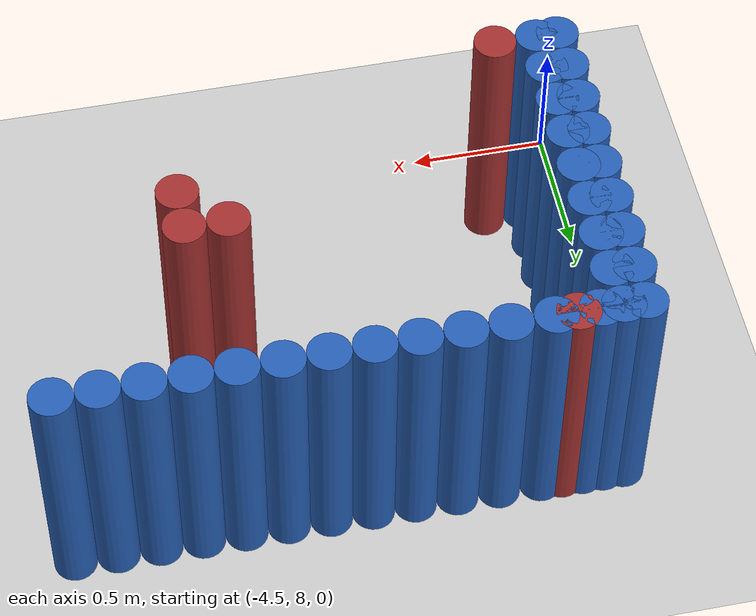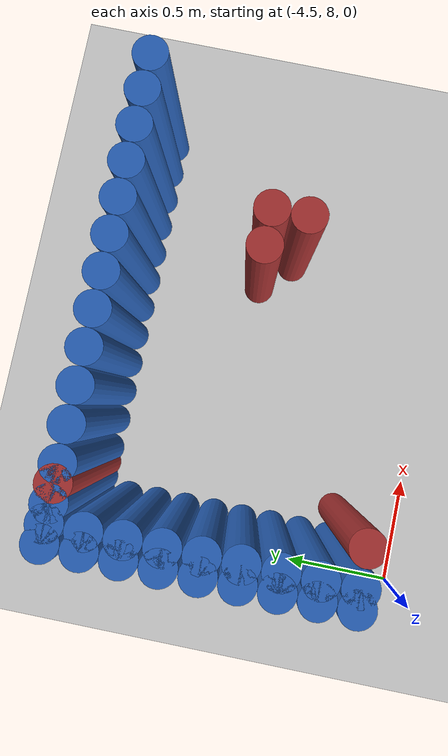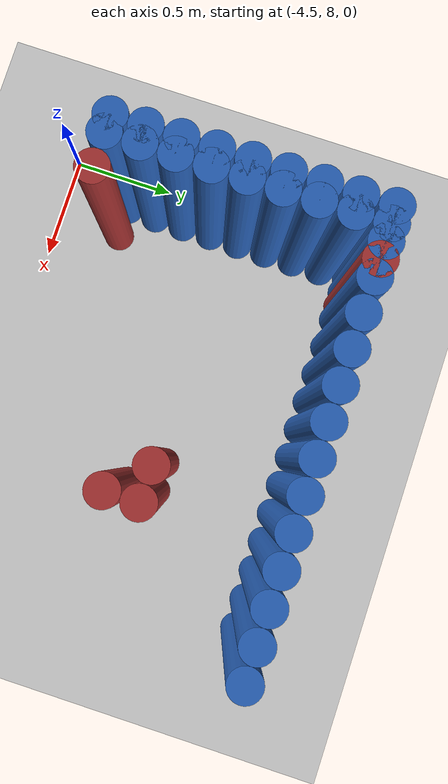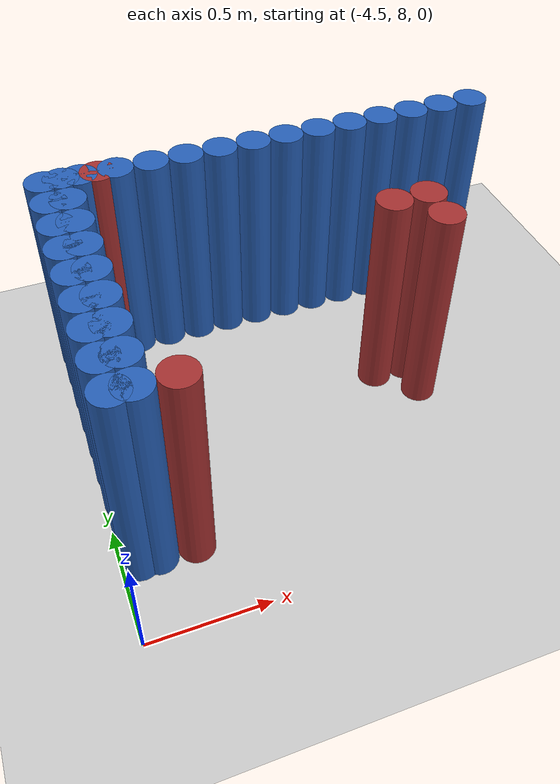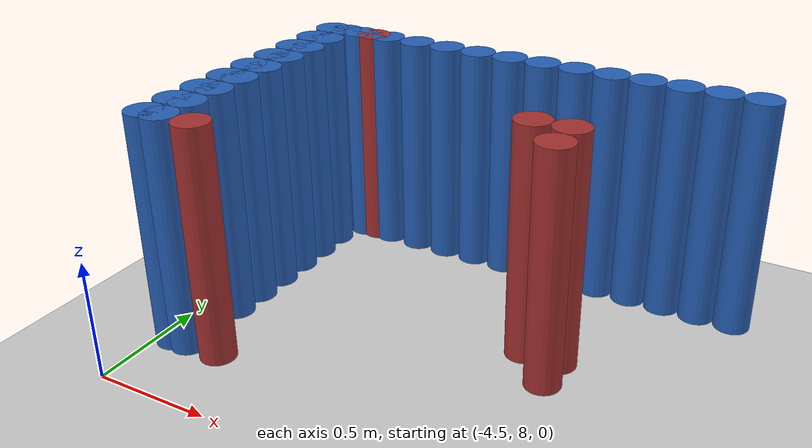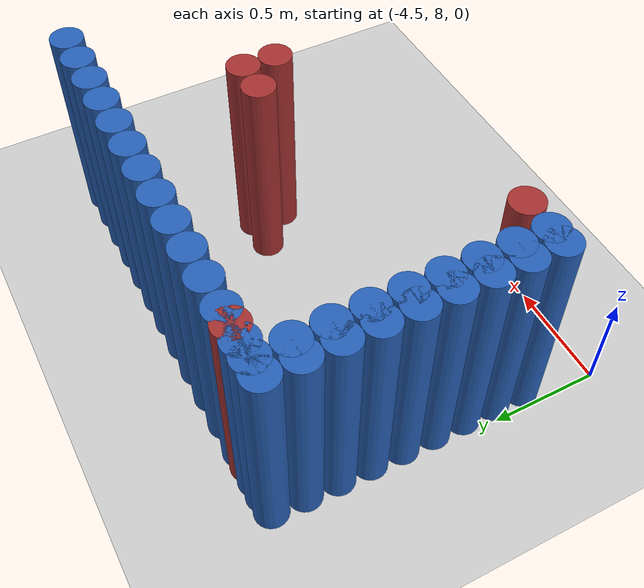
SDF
<sdf version="1.6">
 <world name="barn_world">
  <model name="ground_plane">
   <static>1</static>
   <link name="link">
    <collision name="collision">
     <geometry><plane><normal>0 0 1</normal><size>100 100</size></plane></geometry>
    </collision>
    <visual name="visual">
     <geometry><plane><normal>0 0 1</normal><size>100 100</size></plane></geometry>
     <material>
      <script><uri>file://media/materials/scripts/gazebo.material</uri><name>Gazebo/Grey</name></script>
     </material>
    </visual>
   </link>
  </model>
  <model name="unit_cylinder_147">
   <static>1</static>
   <pose>-4.3500 8.3250 0.5 0 0 0</pose>
   <link name="link">
    <collision name="collision">
     <geometry><cylinder><radius>0.075</radius><length>1</length></cylinder></geometry>
    </collision>
    <visual name="visual">
     <geometry><cylinder><radius>0.075</radius><length>1</length></cylinder></geometry>
     <material><ambient>0.152 0.379 0.72 1</ambient><diffuse>0.152 0.379 0.72 1</diffuse></material>
    </visual>
   </link>
  </model>
  <model name="unit_cylinder_148">
   <static>1</static>
   <pose>-4.3500 8.4750 0.5 0 0 0</pose>
   <link name="link">
    <collision name="collision">
     <geometry><cylinder><radius>0.075</radius><length>1</length></cylinder></geometry>
    </collision>
    <visual name="visual">
     <geometry><cylinder><radius>0.075</radius><length>1</length></cylinder></geometry>
     <material><ambient>0.152 0.379 0.72 1</ambient><diffuse>0.152 0.379 0.72 1</diffuse></material>
    </visual>
   </link>
  </model>
  <model name="unit_cylinder_149">
   <static>1</static>
   <pose>-4.3500 8.6250 0.5 0 0 0</pose>
   <link name="link">
    <collision name="collision">
     <geometry><cylinder><radius>0.075</radius><length>1</length></cylinder></geometry>
    </collision>
    <visual name="visual">
     <geometry><cylinder><radius>0.075</radius><length>1</length></cylinder></geometry>
     <material><ambient>0.152 0.379 0.72 1</ambient><diffuse>0.152 0.379 0.72 1</diffuse></material>
    </visual>
   </link>
  </model>
  <model name="unit_cylinder_150">
   <static>1</static>
   <pose>-4.3500 8.7750 0.5 0 0 0</pose>
   <link name="link">
    <collision name="collision">
     <geometry><cylinder><radius>0.075</radius><length>1</length></cylinder></geometry>
    </collision>
    <visual name="visual">
     <geometry><cylinder><radius>0.075</radius><length>1</length></cylinder></geometry>
     <material><ambient>0.152 0.379 0.72 1</ambient><diffuse>0.152 0.379 0.72 1</diffuse></material>
    </visual>
   </link>
  </model>
  <model name="unit_cylinder_151">
   <static>1</static>
   <pose>-4.3500 8.9250 0.5 0 0 0</pose>
   <link name="link">
    <collision name="collision">
     <geometry><cylinder><radius>0.075</radius><length>1</length></cylinder></geometry>
    </collision>
    <visual name="visual">
     <geometry><cylinder><radius>0.075</radius><length>1</length></cylinder></geometry>
     <material><ambient>0.152 0.379 0.72 1</ambient><diffuse>0.152 0.379 0.72 1</diffuse></material>
    </visual>
   </link>
  </model>
  <model name="unit_cylinder_152">
   <static>1</static>
   <pose>-4.3500 9.0750 0.5 0 0 0</pose>
   <link name="link">
    <collision name="collision">
     <geometry><cylinder><radius>0.075</radius><length>1</length></cylinder></geometry>
    </collision>
    <visual name="visual">
     <geometry><cylinder><radius>0.075</radius><length>1</length></cylinder></geometry>
     <material><ambient>0.152 0.379 0.72 1</ambient><diffuse>0.152 0.379 0.72 1</diffuse></material>
    </visual>
   </link>
  </model>
  <model name="unit_cylinder_153">
   <static>1</static>
   <pose>-4.3500 9.2250 0.5 0 0 0</pose>
   <link name="link">
    <collision name="collision">
     <geometry><cylinder><radius>0.075</radius><length>1</length></cylinder></geometry>
    </collision>
    <visual name="visual">
     <geometry><cylinder><radius>0.075</radius><length>1</length></cylinder></geometry>
     <material><ambient>0.152 0.379 0.72 1</ambient><diffuse>0.152 0.379 0.72 1</diffuse></material>
    </visual>
   </link>
  </model>
  <model name="unit_cylinder_154">
   <static>1</static>
   <pose>-4.3500 9.3750 0.5 0 0 0</pose>
   <link name="link">
    <collision name="collision">
     <geometry><cylinder><radius>0.075</radius><length>1</length></cylinder></geometry>
    </collision>
    <visual name="visual">
     <geometry><cylinder><radius>0.075</radius><length>1</length></cylinder></geometry>
     <material><ambient>0.152 0.379 0.72 1</ambient><diffuse>0.152 0.379 0.72 1</diffuse></material>
    </visual>
   </link>
  </model>
  <model name="unit_cylinder_155">
   <static>1</static>
   <pose>-4.3500 9.5250 0.5 0 0 0</pose>
   <link name="link">
    <collision name="collision">
     <geometry><cylinder><radius>0.075</radius><length>1</length></cylinder></geometry>
    </collision>
    <visual name="visual">
     <geometry><cylinder><radius>0.075</radius><length>1</length></cylinder></geometry>
     <material><ambient>0.152 0.379 0.72 1</ambient><diffuse>0.152 0.379 0.72 1</diffuse></material>
    </visual>
   </link>
  </model>
  <model name="unit_cylinder_159">
   <static>1</static>
   <pose>-4.2000 8.3250 0.5 0 0 0</pose>
   <link name="link">
    <collision name="collision">
     <geometry><cylinder><radius>0.075</radius><length>1</length></cylinder></geometry>
    </collision>
    <visual name="visual">
     <geometry><cylinder><radius>0.075</radius><length>1</length></cylinder></geometry>
     <material><ambient>0.648 0.192 0.192 1</ambient><diffuse>0.648 0.192 0.192 1</diffuse></material>
    </visual>
   </link>
  </model>
  <model name="unit_cylinder_160">
   <static>1</static>
   <pose>-4.2000 9.5250 0.5 0 0 0</pose>
   <link name="link">
    <collision name="collision">
     <geometry><cylinder><radius>0.075</radius><length>1</length></cylinder></geometry>
    </collision>
    <visual name="visual">
     <geometry><cylinder><radius>0.075</radius><length>1</length></cylinder></geometry>
     <material><ambient>0.648 0.192 0.192 1</ambient><diffuse>0.648 0.192 0.192 1</diffuse></material>
    </visual>
   </link>
  </model>
  <model name="unit_cylinder_161">
   <static>1</static>
   <pose>-3.1500 8.9250 0.5 0 0 0</pose>
   <link name="link">
    <collision name="collision">
     <geometry><cylinder><radius>0.075</radius><length>1</length></cylinder></geometry>
    </collision>
    <visual name="visual">
     <geometry><cylinder><radius>0.075</radius><length>1</length></cylinder></geometry>
     <material><ambient>0.648 0.192 0.192 1</ambient><diffuse>0.648 0.192 0.192 1</diffuse></material>
    </visual>
   </link>
  </model>
  <model name="unit_cylinder_162">
   <static>1</static>
   <pose>-3.0000 8.7750 0.5 0 0 0</pose>
   <link name="link">
    <collision name="collision">
     <geometry><cylinder><radius>0.075</radius><length>1</length></cylinder></geometry>
    </collision>
    <visual name="visual">
     <geometry><cylinder><radius>0.075</radius><length>1</length></cylinder></geometry>
     <material><ambient>0.648 0.192 0.192 1</ambient><diffuse>0.648 0.192 0.192 1</diffuse></material>
    </visual>
   </link>
  </model>
  <model name="unit_cylinder_163">
   <static>1</static>
   <pose>-3.0000 8.9250 0.5 0 0 0</pose>
   <link name="link">
    <collision name="collision">
     <geometry><cylinder><radius>0.075</radius><length>1</length></cylinder></geometry>
    </collision>
    <visual name="visual">
     <geometry><cylinder><radius>0.075</radius><length>1</length></cylinder></geometry>
     <material><ambient>0.648 0.192 0.192 1</ambient><diffuse>0.648 0.192 0.192 1</diffuse></material>
    </visual>
   </link>
  </model>
  <model name="unit_cylinder_215">
   <static>1</static>
   <pose>-2.4750 9.5250 0.5 0 0 0</pose>
   <link name="link">
    <collision name="collision">
     <geometry><cylinder><radius>0.075</radius><length>1</length></cylinder></geometry>
    </collision>
    <visual name="visual">
     <geometry><cylinder><radius>0.075</radius><length>1</length></cylinder></geometry>
     <material><ambient>0.152 0.379 0.72 1</ambient><diffuse>0.152 0.379 0.72 1</diffuse></material>
    </visual>
   </link>
  </model>
  <model name="unit_cylinder_216">
   <static>1</static>
   <pose>-2.6250 9.5250 0.5 0 0 0</pose>
   <link name="link">
    <collision name="collision">
     <geometry><cylinder><radius>0.075</radius><length>1</length></cylinder></geometry>
    </collision>
    <visual name="visual">
     <geometry><cylinder><radius>0.075</radius><length>1</length></cylinder></geometry>
     <material><ambient>0.152 0.379 0.72 1</ambient><diffuse>0.152 0.379 0.72 1</diffuse></material>
    </visual>
   </link>
  </model>
  <model name="unit_cylinder_217">
   <static>1</static>
   <pose>-2.7750 9.5250 0.5 0 0 0</pose>
   <link name="link">
    <collision name="collision">
     <geometry><cylinder><radius>0.075</radius><length>1</length></cylinder></geometry>
    </collision>
    <visual name="visual">
     <geometry><cylinder><radius>0.075</radius><length>1</length></cylinder></geometry>
     <material><ambient>0.152 0.379 0.72 1</ambient><diffuse>0.152 0.379 0.72 1</diffuse></material>
    </visual>
   </link>
  </model>
  <model name="unit_cylinder_218">
   <static>1</static>
   <pose>-2.9250 9.5250 0.5 0 0 0</pose>
   <link name="link">
    <collision name="collision">
     <geometry><cylinder><radius>0.075</radius><length>1</length></cylinder></geometry>
    </collision>
    <visual name="visual">
     <geometry><cylinder><radius>0.075</radius><length>1</length></cylinder></geometry>
     <material><ambient>0.152 0.379 0.72 1</ambient><diffuse>0.152 0.379 0.72 1</diffuse></material>
    </visual>
   </link>
  </model>
  <model name="unit_cylinder_219">
   <static>1</static>
   <pose>-3.0750 9.5250 0.5 0 0 0</pose>
   <link name="link">
    <collision name="collision">
     <geometry><cylinder><radius>0.075</radius><length>1</length></cylinder></geometry>
    </collision>
    <visual name="visual">
     <geometry><cylinder><radius>0.075</radius><length>1</length></cylinder></geometry>
     <material><ambient>0.152 0.379 0.72 1</ambient><diffuse>0.152 0.379 0.72 1</diffuse></material>
    </visual>
   </link>
  </model>
  <model name="unit_cylinder_220">
   <static>1</static>
   <pose>-3.2250 9.5250 0.5 0 0 0</pose>
   <link name="link">
    <collision name="collision">
     <geometry><cylinder><radius>0.075</radius><length>1</length></cylinder></geometry>
    </collision>
    <visual name="visual">
     <geometry><cylinder><radius>0.075</radius><length>1</length></cylinder></geometry>
     <material><ambient>0.152 0.379 0.72 1</ambient><diffuse>0.152 0.379 0.72 1</diffuse></material>
    </visual>
   </link>
  </model>
  <model name="unit_cylinder_221">
   <static>1</static>
   <pose>-3.3750 9.5250 0.5 0 0 0</pose>
   <link name="link">
    <collision name="collision">
     <geometry><cylinder><radius>0.075</radius><length>1</length></cylinder></geometry>
    </collision>
    <visual name="visual">
     <geometry><cylinder><radius>0.075</radius><length>1</length></cylinder></geometry>
     <material><ambient>0.152 0.379 0.72 1</ambient><diffuse>0.152 0.379 0.72 1</diffuse></material>
    </visual>
   </link>
  </model>
  <model name="unit_cylinder_222">
   <static>1</static>
   <pose>-3.5250 9.5250 0.5 0 0 0</pose>
   <link name="link">
    <collision name="collision">
     <geometry><cylinder><radius>0.075</radius><length>1</length></cylinder></geometry>
    </collision>
    <visual name="visual">
     <geometry><cylinder><radius>0.075</radius><length>1</length></cylinder></geometry>
     <material><ambient>0.152 0.379 0.72 1</ambient><diffuse>0.152 0.379 0.72 1</diffuse></material>
    </visual>
   </link>
  </model>
  <model name="unit_cylinder_223">
   <static>1</static>
   <pose>-3.6750 9.5250 0.5 0 0 0</pose>
   <link name="link">
    <collision name="collision">
     <geometry><cylinder><radius>0.075</radius><length>1</length></cylinder></geometry>
    </collision>
    <visual name="visual">
     <geometry><cylinder><radius>0.075</radius><length>1</length></cylinder></geometry>
     <material><ambient>0.152 0.379 0.72 1</ambient><diffuse>0.152 0.379 0.72 1</diffuse></material>
    </visual>
   </link>
  </model>
  <model name="unit_cylinder_224">
   <static>1</static>
   <pose>-3.8250 9.5250 0.5 0 0 0</pose>
   <link name="link">
    <collision name="collision">
     <geometry><cylinder><radius>0.075</radius><length>1</length></cylinder></geometry>
    </collision>
    <visual name="visual">
     <geometry><cylinder><radius>0.075</radius><length>1</length></cylinder></geometry>
     <material><ambient>0.152 0.379 0.72 1</ambient><diffuse>0.152 0.379 0.72 1</diffuse></material>
    </visual>
   </link>
  </model>
  <model name="unit_cylinder_225">
   <static>1</static>
   <pose>-3.9750 9.5250 0.5 0 0 0</pose>
   <link name="link">
    <collision name="collision">
     <geometry><cylinder><radius>0.075</radius><length>1</length></cylinder></geometry>
    </collision>
    <visual name="visual">
     <geometry><cylinder><radius>0.075</radius><length>1</length></cylinder></geometry>
     <material><ambient>0.152 0.379 0.72 1</ambient><diffuse>0.152 0.379 0.72 1</diffuse></material>
    </visual>
   </link>
  </model>
  <model name="unit_cylinder_226">
   <static>1</static>
   <pose>-4.1250 9.5250 0.5 0 0 0</pose>
   <link name="link">
    <collision name="collision">
     <geometry><cylinder><radius>0.075</radius><length>1</length></cylinder></geometry>
    </collision>
    <visual name="visual">
     <geometry><cylinder><radius>0.075</radius><length>1</length></cylinder></geometry>
     <material><ambient>0.152 0.379 0.72 1</ambient><diffuse>0.152 0.379 0.72 1</diffuse></material>
    </visual>
   </link>
  </model>
  <model name="unit_cylinder_227">
   <static>1</static>
   <pose>-4.2750 9.5250 0.5 0 0 0</pose>
   <link name="link">
    <collision name="collision">
     <geometry><cylinder><radius>0.075</radius><length>1</length></cylinder></geometry>
    </collision>
    <visual name="visual">
     <geometry><cylinder><radius>0.075</radius><length>1</length></cylinder></geometry>
     <material><ambient>0.152 0.379 0.72 1</ambient><diffuse>0.152 0.379 0.72 1</diffuse></material>
    </visual>
   </link>
  </model>
  <model name="unit_cylinder_228">
   <static>1</static>
   <pose>-4.4250 9.5250 0.5 0 0 0</pose>
   <link name="link">
    <collision name="collision">
     <geometry><cylinder><radius>0.075</radius><length>1</length></cylinder></geometry>
    </collision>
    <visual name="visual">
     <geometry><cylinder><radius>0.075</radius><length>1</length></cylinder></geometry>
     <material><ambient>0.152 0.379 0.72 1</ambient><diffuse>0.152 0.379 0.72 1</diffuse></material>
    </visual>
   </link>
  </model>
  <model name="unit_cylinder_272">
   <static>1</static>
   <pose>-4.4250 8.3250 0.5 0 0 0</pose>
   <link name="link">
    <collision name="collision">
     <geometry><cylinder><radius>0.075</radius><length>1</length></cylinder></geometry>
    </collision>
    <visual name="visual">
     <geometry><cylinder><radius>0.075</radius><length>1</length></cylinder></geometry>
     <material><ambient>0.152 0.379 0.72 1</ambient><diffuse>0.152 0.379 0.72 1</diffuse></material>
    </visual>
   </link>
  </model>
  <model name="unit_cylinder_274">
   <static>1</static>
   <pose>-4.4250 8.4750 0.5 0 0 0</pose>
   <link name="link">
    <collision name="collision">
     <geometry><cylinder><radius>0.075</radius><length>1</length></cylinder></geometry>
    </collision>
    <visual name="visual">
     <geometry><cylinder><radius>0.075</radius><length>1</length></cylinder></geometry>
     <material><ambient>0.152 0.379 0.72 1</ambient><diffuse>0.152 0.379 0.72 1</diffuse></material>
    </visual>
   </link>
  </model>
  <model name="unit_cylinder_276">
   <static>1</static>
   <pose>-4.4250 8.6250 0.5 0 0 0</pose>
   <link name="link">
    <collision name="collision">
     <geometry><cylinder><radius>0.075</radius><length>1</length></cylinder></geometry>
    </collision>
    <visual name="visual">
     <geometry><cylinder><radius>0.075</radius><length>1</length></cylinder></geometry>
     <material><ambient>0.152 0.379 0.72 1</ambient><diffuse>0.152 0.379 0.72 1</diffuse></material>
    </visual>
   </link>
  </model>
  <model name="unit_cylinder_278">
   <static>1</static>
   <pose>-4.4250 8.7750 0.5 0 0 0</pose>
   <link name="link">
    <collision name="collision">
     <geometry><cylinder><radius>0.075</radius><length>1</length></cylinder></geometry>
    </collision>
    <visual name="visual">
     <geometry><cylinder><radius>0.075</radius><length>1</length></cylinder></geometry>
     <material><ambient>0.152 0.379 0.72 1</ambient><diffuse>0.152 0.379 0.72 1</diffuse></material>
    </visual>
   </link>
  </model>
  <model name="unit_cylinder_280">
   <static>1</static>
   <pose>-4.4250 8.9250 0.5 0 0 0</pose>
   <link name="link">
    <collision name="collision">
     <geometry><cylinder><radius>0.075</radius><length>1</length></cylinder></geometry>
    </collision>
    <visual name="visual">
     <geometry><cylinder><radius>0.075</radius><length>1</length></cylinder></geometry>
     <material><ambient>0.152 0.379 0.72 1</ambient><diffuse>0.152 0.379 0.72 1</diffuse></material>
    </visual>
   </link>
  </model>
  <model name="unit_cylinder_282">
   <static>1</static>
   <pose>-4.4250 9.0750 0.5 0 0 0</pose>
   <link name="link">
    <collision name="collision">
     <geometry><cylinder><radius>0.075</radius><length>1</length></cylinder></geometry>
    </collision>
    <visual name="visual">
     <geometry><cylinder><radius>0.075</radius><length>1</length></cylinder></geometry>
     <material><ambient>0.152 0.379 0.72 1</ambient><diffuse>0.152 0.379 0.72 1</diffuse></material>
    </visual>
   </link>
  </model>
  <model name="unit_cylinder_284">
   <static>1</static>
   <pose>-4.4250 9.2250 0.5 0 0 0</pose>
   <link name="link">
    <collision name="collision">
     <geometry><cylinder><radius>0.075</radius><length>1</length></cylinder></geometry>
    </collision>
    <visual name="visual">
     <geometry><cylinder><radius>0.075</radius><length>1</length></cylinder></geometry>
     <material><ambient>0.152 0.379 0.72 1</ambient><diffuse>0.152 0.379 0.72 1</diffuse></material>
    </visual>
   </link>
  </model>
  <model name="unit_cylinder_286">
   <static>1</static>
   <pose>-4.4250 9.3750 0.5 0 0 0</pose>
   <link name="link">
    <collision name="collision">
     <geometry><cylinder><radius>0.075</radius><length>1</length></cylinder></geometry>
    </collision>
    <visual name="visual">
     <geometry><cylinder><radius>0.075</radius><length>1</length></cylinder></geometry>
     <material><ambient>0.152 0.379 0.72 1</ambient><diffuse>0.152 0.379 0.72 1</diffuse></material>
    </visual>
   </link>
  </model>
 </world>
</sdf>
